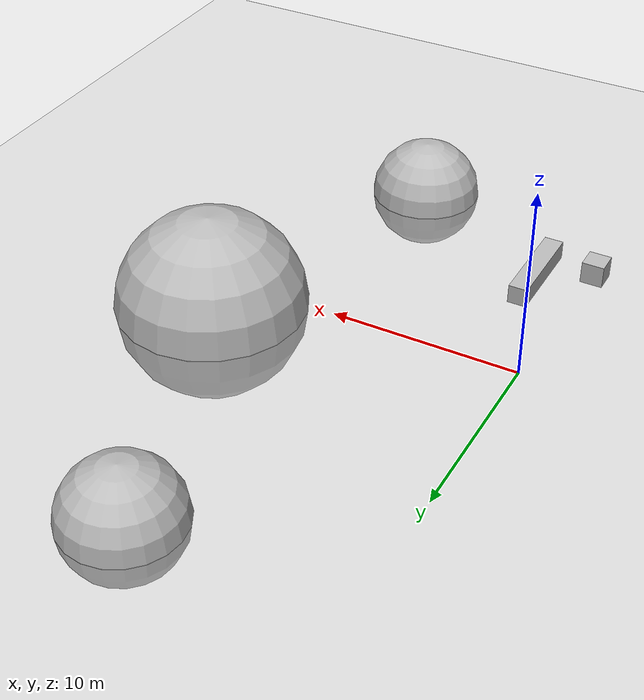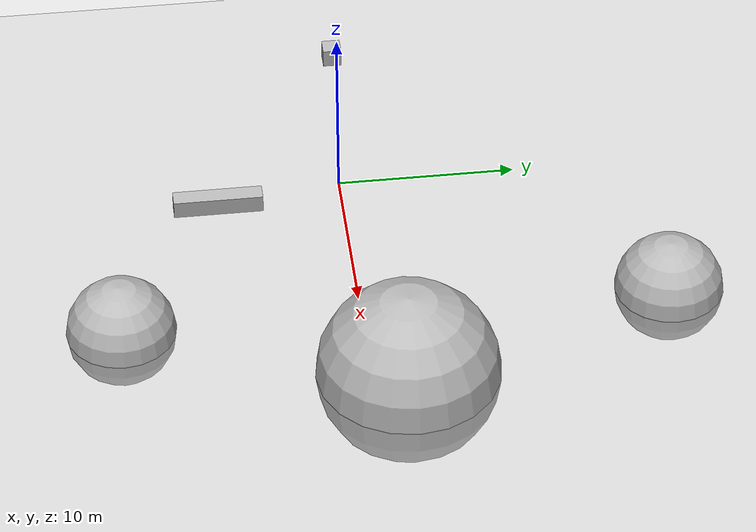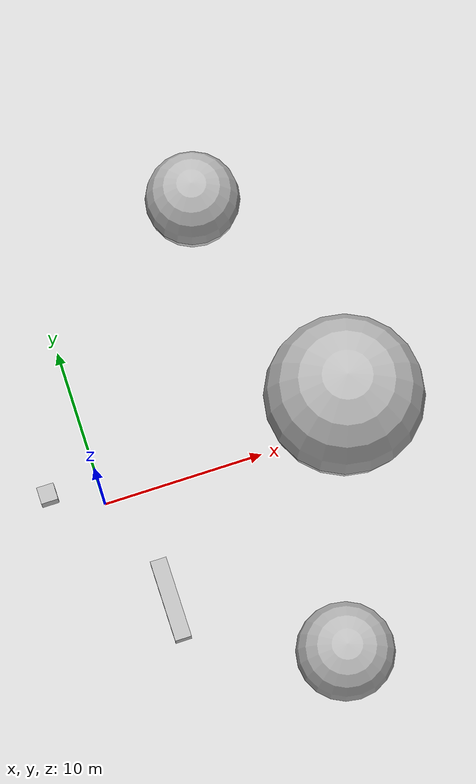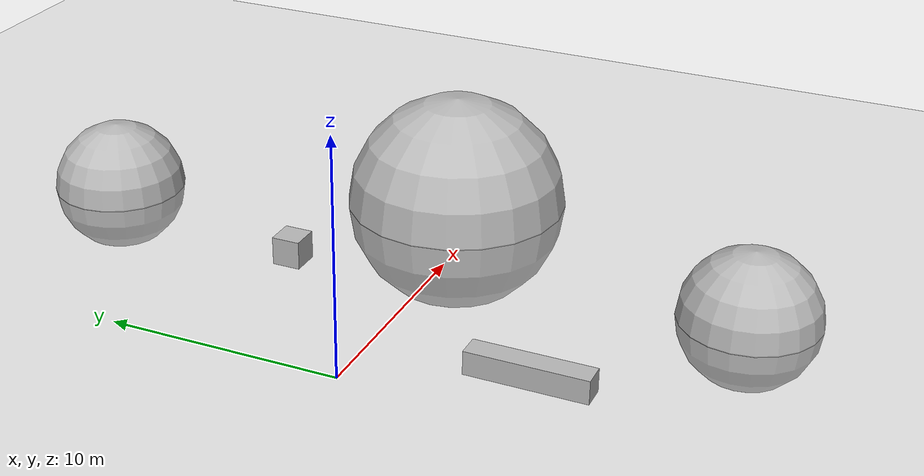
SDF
<?xml version="1.0" ?>
<sdf version="1.6">
  <world name="world_trial">

    <physics name="1ms" type="ignored">
      <max_step_size>0.001</max_step_size>
      <real_time_factor>1.0</real_time_factor>
    </physics>
    <plugin
      filename="ignition-gazebo-physics-system"
      name="gz::sim::systems::Physics">
    </plugin>
    <plugin
      filename="ignition-gazebo-user-commands-system"
      name="gz::sim::systems::UserCommands">
    </plugin>
    <plugin
      filename="ignition-gazebo-scene-broadcaster-system"
      name="gz::sim::systems::SceneBroadcaster">
    </plugin>

    <light type="directional" name="sun">
      <cast_shadows>true</cast_shadows>
      <pose>0 0 10 0 0 0</pose>
      <diffuse>1 1 1 1</diffuse>
      <specular>0.5 0.5 0.5 1</specular>
      <attenuation>
        <range>1000</range>
        <constant>0.9</constant>
        <linear>0.01</linear>
        <quadratic>0.001</quadratic>
      </attenuation>
      <direction>-0.5 0.1 -0.9</direction>
    </light>

    <model name="ground_plane">
      <static>true</static>
      <link name="link">
        <collision name="collision">
          <geometry>
            <plane>
              <normal>0 0 1</normal>
              <size>100 100</size>
            </plane>
          </geometry>
          <surface>
            <friction>
              <ode>
                <mu>50</mu>
              </ode>
            </friction>
          </surface>
        </collision>
        <visual name="visual">
          <geometry>
            <plane>
              <normal>0 0 1</normal>
              <size>100 100</size>
            </plane>
          </geometry>
          <material>
            <ambient>0.8 0.8 0.8 1</ambient>
            <diffuse>0.8 0.8 0.8 1</diffuse>
            <specular>0.8 0.8 0.8 1</specular>
          </material>
        </visual>
      </link>
    </model>

    <model name="box1">
      <pose>-3 0 7 0 0 0</pose>
      <link name="box_link1">
        <collision name="box_collision">
          <geometry>
            <box>
              <size>1 1 1</size> <!-- Size of the box -->
            </box>
          </geometry>
        </collision>
        <visual name="box_visual">
          <geometry>
            <box>
              <size>1 1 1</size>
            </box>
          </geometry>
        </visual>
      </link>
    </model>

    <model name="box2">
      <pose>2 -7 1 0 0 0</pose>
      <link name="box_link2">
        <collision name="box_collision">
          <geometry>
            <box>
              <size>1 5 1</size> <!-- Size of the box -->
            </box>
          </geometry>
        </collision>
        <visual name="box_visual">
          <geometry>
            <box>
              <size>1 5 1</size>
            </box>
          </geometry>
        </visual>
      </link>
    </model>

    <model name="sph1">
      <pose>16 2 0 0 0 0</pose>
      <link name="sph_link1">
        <collision name="sph_collision">
          <geometry>
            <sphere>
              <radius>5</radius> <!-- Size of the ball -->
            </sphere>
          </geometry>
        </collision>
        <visual name="sph_visual">
          <geometry>
            <sphere>
              <radius>5</radius>
            </sphere>
          </geometry>
        </visual>
      </link>
    </model>

    <model name="sph2">
      <pose>11 -13 0 0 0 0</pose>
      <link name="sph_link2">
        <collision name="sph_collision2">
          <geometry>
            <sphere>
              <radius>3</radius> <!-- Size of the ball -->
            </sphere>
          </geometry>
        </collision>
        <visual name="sph_visual2">
          <geometry>
            <sphere>
              <radius>3</radius>
            </sphere>
          </geometry>
        </visual>
      </link>
    </model>

    <model name="sph3">
      <pose>11 17 0 0 0 0</pose>
      <link name="sph_link3">
        <collision name="sph_collision3">
          <geometry>
            <sphere>
              <radius>3</radius> <!-- Size of the ball -->
            </sphere>
          </geometry>
        </collision>
        <visual name="sph_visual3">
          <geometry>
            <sphere>
              <radius>3</radius>
            </sphere>
          </geometry>
        </visual>
      </link>
    </model>

  </world>
</sdf>
